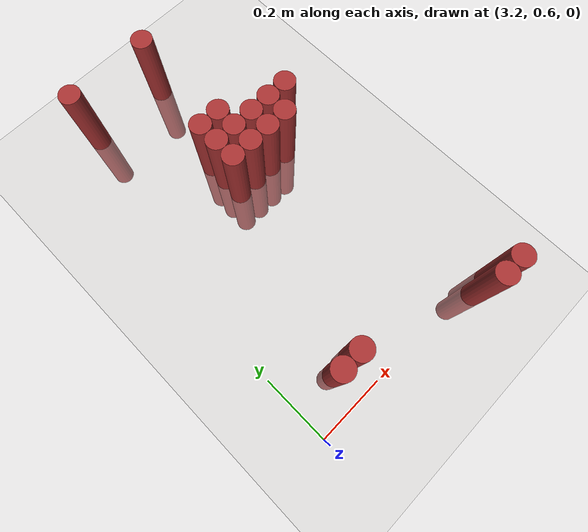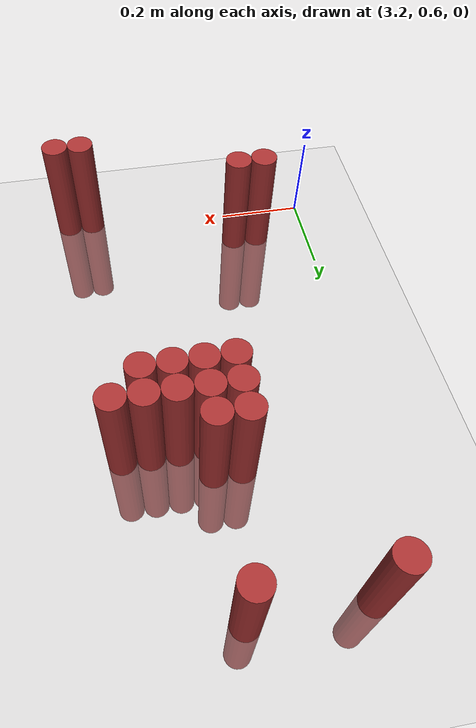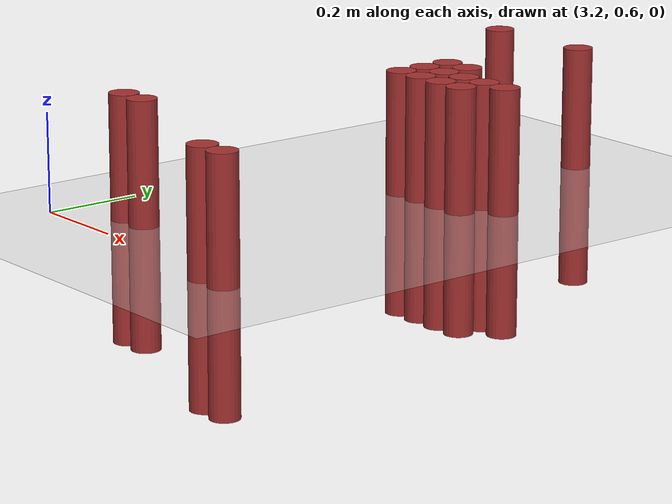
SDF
<sdf version="1.6">
 <world name="default">
  <model name="ground_plane">
   <static>1</static>
   <link name="link">
    <collision name="collision">
     <geometry><plane><normal>0 0 1</normal><size>100 100</size></plane></geometry>
     <surface><friction><ode><mu>100</mu><mu2>50</mu2></ode></friction></surface>
    </collision>
    <visual name="visual">
     <cast_shadows>0</cast_shadows>
     <geometry><plane><normal>0 0 1</normal><size>100 100</size></plane></geometry>
     <material>
      <script><uri>file://media/materials/scripts/gazebo.material</uri><name>Gazebo/Grey</name></script>
     </material>
    </visual>
   </link>
  </model>
  <model name="unit_cylinder_140">
   <static>1</static>
   <pose>3.330000 1.650000 0.000000 0.000000 0.000000 0.000000</pose>
   <link name="link">
    <inertial>
     <mass>1</mass>
     <inertia><ixx>0.145833</ixx><ixy>0</ixy><ixz>0</ixz><iyy>0.145833</iyy><iyz>0</iyz><izz>0.125</izz></inertia>
    </inertial>
    <collision name="collision">
     <geometry><cylinder><radius>0.030000</radius><length>0.5</length></cylinder></geometry>
    </collision>
    <visual name="visual">
     <geometry><cylinder><radius>0.030000</radius><length>0.5</length></cylinder></geometry>
     <material>
      <ambient>0.648000 0.192000 0.192000 1</ambient>
      <diffuse>0.648000 0.192000 0.192000 1</diffuse>
     </material>
     <material>
      <script><name>Gazebo/Grey</name><uri>file://media/materials/scripts/gazebo.material</uri></script>
     </material>
    </visual>
   </link>
  </model>
  <model name="unit_cylinder_141">
   <static>1</static>
   <pose>3.570000 1.650000 0.000000 0.000000 0.000000 0.000000</pose>
   <link name="link">
    <inertial>
     <mass>1</mass>
     <inertia><ixx>0.145833</ixx><ixy>0</ixy><ixz>0</ixz><iyy>0.145833</iyy><iyz>0</iyz><izz>0.125</izz></inertia>
    </inertial>
    <collision name="collision">
     <geometry><cylinder><radius>0.030000</radius><length>0.5</length></cylinder></geometry>
    </collision>
    <visual name="visual">
     <geometry><cylinder><radius>0.030000</radius><length>0.5</length></cylinder></geometry>
     <material>
      <ambient>0.648000 0.192000 0.192000 1</ambient>
      <diffuse>0.648000 0.192000 0.192000 1</diffuse>
     </material>
     <material>
      <script><name>Gazebo/Grey</name><uri>file://media/materials/scripts/gazebo.material</uri></script>
     </material>
    </visual>
   </link>
  </model>
  <model name="unit_cylinder_151">
   <static>1</static>
   <pose>3.510000 1.350000 0.000000 0.000000 0.000000 0.000000</pose>
   <link name="link">
    <inertial>
     <mass>1</mass>
     <inertia><ixx>0.145833</ixx><ixy>0</ixy><ixz>0</ixz><iyy>0.145833</iyy><iyz>0</iyz><izz>0.125</izz></inertia>
    </inertial>
    <collision name="collision">
     <geometry><cylinder><radius>0.030000</radius><length>0.5</length></cylinder></geometry>
    </collision>
    <visual name="visual">
     <geometry><cylinder><radius>0.030000</radius><length>0.5</length></cylinder></geometry>
     <material>
      <ambient>0.648000 0.192000 0.192000 1</ambient>
      <diffuse>0.648000 0.192000 0.192000 1</diffuse>
     </material>
     <material>
      <script><name>Gazebo/Grey</name><uri>file://media/materials/scripts/gazebo.material</uri></script>
     </material>
    </visual>
   </link>
  </model>
  <model name="unit_cylinder_152">
   <static>1</static>
   <pose>3.570000 1.350000 0.000000 0.000000 0.000000 0.000000</pose>
   <link name="link">
    <inertial>
     <mass>1</mass>
     <inertia><ixx>0.145833</ixx><ixy>0</ixy><ixz>0</ixz><iyy>0.145833</iyy><iyz>0</iyz><izz>0.125</izz></inertia>
    </inertial>
    <collision name="collision">
     <geometry><cylinder><radius>0.030000</radius><length>0.5</length></cylinder></geometry>
    </collision>
    <visual name="visual">
     <geometry><cylinder><radius>0.030000</radius><length>0.5</length></cylinder></geometry>
     <material>
      <ambient>0.648000 0.192000 0.192000 1</ambient>
      <diffuse>0.648000 0.192000 0.192000 1</diffuse>
     </material>
     <material>
      <script><name>Gazebo/Grey</name><uri>file://media/materials/scripts/gazebo.material</uri></script>
     </material>
    </visual>
   </link>
  </model>
  <model name="unit_cylinder_154">
   <static>1</static>
   <pose>3.510000 1.290000 0.000000 0.000000 0.000000 0.000000</pose>
   <link name="link">
    <inertial>
     <mass>1</mass>
     <inertia><ixx>0.145833</ixx><ixy>0</ixy><ixz>0</ixz><iyy>0.145833</iyy><iyz>0</iyz><izz>0.125</izz></inertia>
    </inertial>
    <collision name="collision">
     <geometry><cylinder><radius>0.030000</radius><length>0.5</length></cylinder></geometry>
    </collision>
    <visual name="visual">
     <geometry><cylinder><radius>0.030000</radius><length>0.5</length></cylinder></geometry>
     <material>
      <ambient>0.648000 0.192000 0.192000 1</ambient>
      <diffuse>0.648000 0.192000 0.192000 1</diffuse>
     </material>
     <material>
      <script><name>Gazebo/Grey</name><uri>file://media/materials/scripts/gazebo.material</uri></script>
     </material>
    </visual>
   </link>
  </model>
  <model name="unit_cylinder_155">
   <static>1</static>
   <pose>3.570000 1.290000 0.000000 0.000000 0.000000 0.000000</pose>
   <link name="link">
    <inertial>
     <mass>1</mass>
     <inertia><ixx>0.145833</ixx><ixy>0</ixy><ixz>0</ixz><iyy>0.145833</iyy><iyz>0</iyz><izz>0.125</izz></inertia>
    </inertial>
    <collision name="collision">
     <geometry><cylinder><radius>0.030000</radius><length>0.5</length></cylinder></geometry>
    </collision>
    <visual name="visual">
     <geometry><cylinder><radius>0.030000</radius><length>0.5</length></cylinder></geometry>
     <material>
      <ambient>0.648000 0.192000 0.192000 1</ambient>
      <diffuse>0.648000 0.192000 0.192000 1</diffuse>
     </material>
     <material>
      <script><name>Gazebo/Grey</name><uri>file://media/materials/scripts/gazebo.material</uri></script>
     </material>
    </visual>
   </link>
  </model>
  <model name="unit_cylinder_156">
   <static>1</static>
   <pose>3.630000 1.290000 0.000000 0.000000 0.000000 0.000000</pose>
   <link name="link">
    <inertial>
     <mass>1</mass>
     <inertia><ixx>0.145833</ixx><ixy>0</ixy><ixz>0</ixz><iyy>0.145833</iyy><iyz>0</iyz><izz>0.125</izz></inertia>
    </inertial>
    <collision name="collision">
     <geometry><cylinder><radius>0.030000</radius><length>0.5</length></cylinder></geometry>
    </collision>
    <visual name="visual">
     <geometry><cylinder><radius>0.030000</radius><length>0.5</length></cylinder></geometry>
     <material>
      <ambient>0.648000 0.192000 0.192000 1</ambient>
      <diffuse>0.648000 0.192000 0.192000 1</diffuse>
     </material>
     <material>
      <script><name>Gazebo/Grey</name><uri>file://media/materials/scripts/gazebo.material</uri></script>
     </material>
    </visual>
   </link>
  </model>
  <model name="unit_cylinder_157">
   <static>1</static>
   <pose>3.690000 1.290000 0.000000 0.000000 0.000000 0.000000</pose>
   <link name="link">
    <inertial>
     <mass>1</mass>
     <inertia><ixx>0.145833</ixx><ixy>0</ixy><ixz>0</ixz><iyy>0.145833</iyy><iyz>0</iyz><izz>0.125</izz></inertia>
    </inertial>
    <collision name="collision">
     <geometry><cylinder><radius>0.030000</radius><length>0.5</length></cylinder></geometry>
    </collision>
    <visual name="visual">
     <geometry><cylinder><radius>0.030000</radius><length>0.5</length></cylinder></geometry>
     <material>
      <ambient>0.648000 0.192000 0.192000 1</ambient>
      <diffuse>0.648000 0.192000 0.192000 1</diffuse>
     </material>
     <material>
      <script><name>Gazebo/Grey</name><uri>file://media/materials/scripts/gazebo.material</uri></script>
     </material>
    </visual>
   </link>
  </model>
  <model name="unit_cylinder_158">
   <static>1</static>
   <pose>3.750000 1.290000 0.000000 0.000000 0.000000 0.000000</pose>
   <link name="link">
    <inertial>
     <mass>1</mass>
     <inertia><ixx>0.145833</ixx><ixy>0</ixy><ixz>0</ixz><iyy>0.145833</iyy><iyz>0</iyz><izz>0.125</izz></inertia>
    </inertial>
    <collision name="collision">
     <geometry><cylinder><radius>0.030000</radius><length>0.5</length></cylinder></geometry>
    </collision>
    <visual name="visual">
     <geometry><cylinder><radius>0.030000</radius><length>0.5</length></cylinder></geometry>
     <material>
      <ambient>0.648000 0.192000 0.192000 1</ambient>
      <diffuse>0.648000 0.192000 0.192000 1</diffuse>
     </material>
     <material>
      <script><name>Gazebo/Grey</name><uri>file://media/materials/scripts/gazebo.material</uri></script>
     </material>
    </visual>
   </link>
  </model>
  <model name="unit_cylinder_159">
   <static>1</static>
   <pose>3.510000 1.230000 0.000000 0.000000 0.000000 0.000000</pose>
   <link name="link">
    <inertial>
     <mass>1</mass>
     <inertia><ixx>0.145833</ixx><ixy>0</ixy><ixz>0</ixz><iyy>0.145833</iyy><iyz>0</iyz><izz>0.125</izz></inertia>
    </inertial>
    <collision name="collision">
     <geometry><cylinder><radius>0.030000</radius><length>0.5</length></cylinder></geometry>
    </collision>
    <visual name="visual">
     <geometry><cylinder><radius>0.030000</radius><length>0.5</length></cylinder></geometry>
     <material>
      <ambient>0.648000 0.192000 0.192000 1</ambient>
      <diffuse>0.648000 0.192000 0.192000 1</diffuse>
     </material>
     <material>
      <script><name>Gazebo/Grey</name><uri>file://media/materials/scripts/gazebo.material</uri></script>
     </material>
    </visual>
   </link>
  </model>
  <model name="unit_cylinder_160">
   <static>1</static>
   <pose>3.570000 1.230000 0.000000 0.000000 0.000000 0.000000</pose>
   <link name="link">
    <inertial>
     <mass>1</mass>
     <inertia><ixx>0.145833</ixx><ixy>0</ixy><ixz>0</ixz><iyy>0.145833</iyy><iyz>0</iyz><izz>0.125</izz></inertia>
    </inertial>
    <collision name="collision">
     <geometry><cylinder><radius>0.030000</radius><length>0.5</length></cylinder></geometry>
    </collision>
    <visual name="visual">
     <geometry><cylinder><radius>0.030000</radius><length>0.5</length></cylinder></geometry>
     <material>
      <ambient>0.648000 0.192000 0.192000 1</ambient>
      <diffuse>0.648000 0.192000 0.192000 1</diffuse>
     </material>
     <material>
      <script><name>Gazebo/Grey</name><uri>file://media/materials/scripts/gazebo.material</uri></script>
     </material>
    </visual>
   </link>
  </model>
  <model name="unit_cylinder_161">
   <static>1</static>
   <pose>3.630000 1.230000 0.000000 0.000000 0.000000 0.000000</pose>
   <link name="link">
    <inertial>
     <mass>1</mass>
     <inertia><ixx>0.145833</ixx><ixy>0</ixy><ixz>0</ixz><iyy>0.145833</iyy><iyz>0</iyz><izz>0.125</izz></inertia>
    </inertial>
    <collision name="collision">
     <geometry><cylinder><radius>0.030000</radius><length>0.5</length></cylinder></geometry>
    </collision>
    <visual name="visual">
     <geometry><cylinder><radius>0.030000</radius><length>0.5</length></cylinder></geometry>
     <material>
      <ambient>0.648000 0.192000 0.192000 1</ambient>
      <diffuse>0.648000 0.192000 0.192000 1</diffuse>
     </material>
     <material>
      <script><name>Gazebo/Grey</name><uri>file://media/materials/scripts/gazebo.material</uri></script>
     </material>
    </visual>
   </link>
  </model>
  <model name="unit_cylinder_162">
   <static>1</static>
   <pose>3.690000 1.230000 0.000000 0.000000 0.000000 0.000000</pose>
   <link name="link">
    <inertial>
     <mass>1</mass>
     <inertia><ixx>0.145833</ixx><ixy>0</ixy><ixz>0</ixz><iyy>0.145833</iyy><iyz>0</iyz><izz>0.125</izz></inertia>
    </inertial>
    <collision name="collision">
     <geometry><cylinder><radius>0.030000</radius><length>0.5</length></cylinder></geometry>
    </collision>
    <visual name="visual">
     <geometry><cylinder><radius>0.030000</radius><length>0.5</length></cylinder></geometry>
     <material>
      <ambient>0.648000 0.192000 0.192000 1</ambient>
      <diffuse>0.648000 0.192000 0.192000 1</diffuse>
     </material>
     <material>
      <script><name>Gazebo/Grey</name><uri>file://media/materials/scripts/gazebo.material</uri></script>
     </material>
    </visual>
   </link>
  </model>
  <model name="unit_cylinder_175">
   <static>1</static>
   <pose>3.330000 0.690000 0.000000 0.000000 0.000000 0.000000</pose>
   <link name="link">
    <inertial>
     <mass>1</mass>
     <inertia><ixx>0.145833</ixx><ixy>0</ixy><ixz>0</ixz><iyy>0.145833</iyy><iyz>0</iyz><izz>0.125</izz></inertia>
    </inertial>
    <collision name="collision">
     <geometry><cylinder><radius>0.030000</radius><length>0.5</length></cylinder></geometry>
    </collision>
    <visual name="visual">
     <geometry><cylinder><radius>0.030000</radius><length>0.5</length></cylinder></geometry>
     <material>
      <ambient>0.648000 0.192000 0.192000 1</ambient>
      <diffuse>0.648000 0.192000 0.192000 1</diffuse>
     </material>
     <material>
      <script><name>Gazebo/Grey</name><uri>file://media/materials/scripts/gazebo.material</uri></script>
     </material>
    </visual>
   </link>
  </model>
  <model name="unit_cylinder_176">
   <static>1</static>
   <pose>3.390000 0.690000 0.000000 0.000000 0.000000 0.000000</pose>
   <link name="link">
    <inertial>
     <mass>1</mass>
     <inertia><ixx>0.145833</ixx><ixy>0</ixy><ixz>0</ixz><iyy>0.145833</iyy><iyz>0</iyz><izz>0.125</izz></inertia>
    </inertial>
    <collision name="collision">
     <geometry><cylinder><radius>0.030000</radius><length>0.5</length></cylinder></geometry>
    </collision>
    <visual name="visual">
     <geometry><cylinder><radius>0.030000</radius><length>0.5</length></cylinder></geometry>
     <material>
      <ambient>0.648000 0.192000 0.192000 1</ambient>
      <diffuse>0.648000 0.192000 0.192000 1</diffuse>
     </material>
     <material>
      <script><name>Gazebo/Grey</name><uri>file://media/materials/scripts/gazebo.material</uri></script>
     </material>
    </visual>
   </link>
  </model>
  <model name="unit_cylinder_186">
   <static>1</static>
   <pose>3.750000 0.570000 0.000000 0.000000 0.000000 0.000000</pose>
   <link name="link">
    <inertial>
     <mass>1</mass>
     <inertia><ixx>0.145833</ixx><ixy>0</ixy><ixz>0</ixz><iyy>0.145833</iyy><iyz>0</iyz><izz>0.125</izz></inertia>
    </inertial>
    <collision name="collision">
     <geometry><cylinder><radius>0.030000</radius><length>0.5</length></cylinder></geometry>
    </collision>
    <visual name="visual">
     <geometry><cylinder><radius>0.030000</radius><length>0.5</length></cylinder></geometry>
     <material>
      <ambient>0.648000 0.192000 0.192000 1</ambient>
      <diffuse>0.648000 0.192000 0.192000 1</diffuse>
     </material>
     <material>
      <script><name>Gazebo/Grey</name><uri>file://media/materials/scripts/gazebo.material</uri></script>
     </material>
    </visual>
   </link>
  </model>
  <model name="unit_cylinder_187">
   <static>1</static>
   <pose>3.810000 0.570000 0.000000 0.000000 0.000000 0.000000</pose>
   <link name="link">
    <inertial>
     <mass>1</mass>
     <inertia><ixx>0.145833</ixx><ixy>0</ixy><ixz>0</ixz><iyy>0.145833</iyy><iyz>0</iyz><izz>0.125</izz></inertia>
    </inertial>
    <collision name="collision">
     <geometry><cylinder><radius>0.030000</radius><length>0.5</length></cylinder></geometry>
    </collision>
    <visual name="visual">
     <geometry><cylinder><radius>0.030000</radius><length>0.5</length></cylinder></geometry>
     <material>
      <ambient>0.648000 0.192000 0.192000 1</ambient>
      <diffuse>0.648000 0.192000 0.192000 1</diffuse>
     </material>
     <material>
      <script><name>Gazebo/Grey</name><uri>file://media/materials/scripts/gazebo.material</uri></script>
     </material>
    </visual>
   </link>
  </model>
 </world>
</sdf>
